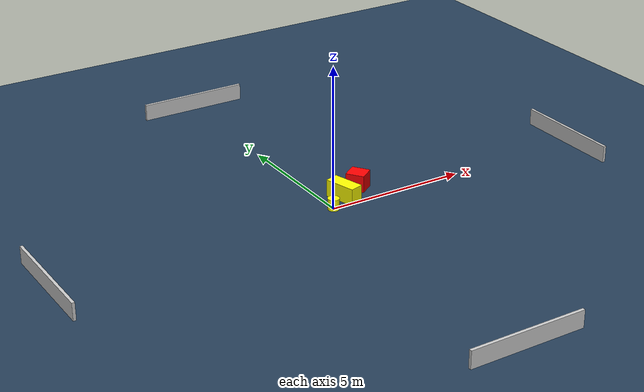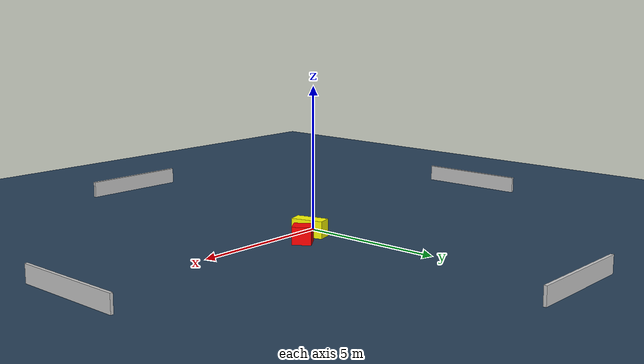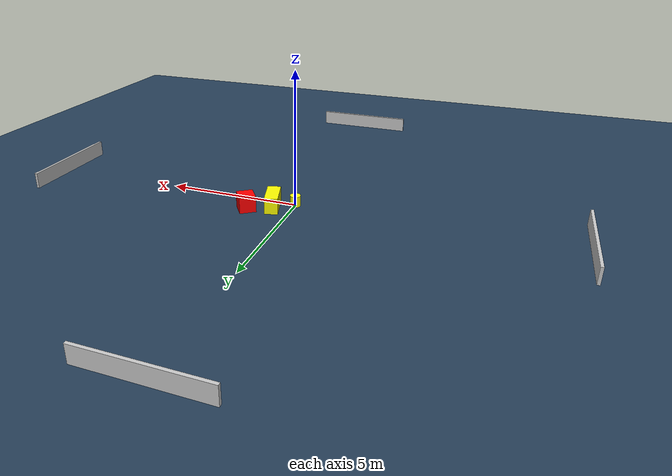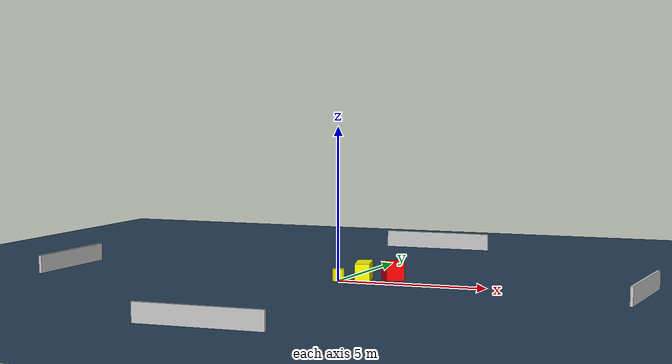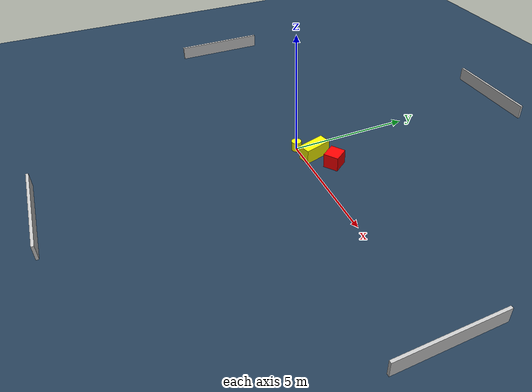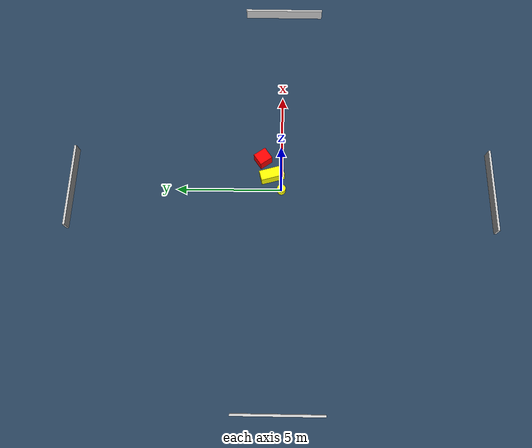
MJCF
<?xml version="1.0" ?>
<mujoco model="generated_environment">
  <option timestep="0.01" integrator="RK4" cone="elliptic"/>
  <default>
    <geom density="1"/>
  </default>
  <asset>
    <texture builtin="gradient" height="3072" name="skybox" rgb1="0.3 0.5 0.7" rgb2="0 0 0" type="skybox" width="512"/>
    <texture builtin="checker" height="300" name="groundplane" rgb1="0.2 0.3 0.4" rgb2="0.1 0.2 0.3" type="2d" width="300"/>
    <material name="groundplane" reflectance="0.2" texrepeat="5 5" texture="groundplane"/>
  </asset>
  <worldbody>
    <light dir="0 0 -1" directional="true" pos="0 0 1.5"/>
    <geom condim="3" friction="0.5 0.005 0.001" material="groundplane" name="floor" pos="0 0 0" size="0 0 0.05" type="plane"/>
    <body name="walls">
      <geom name="wall_1" condim="4" pos="-10.0 0.0 0.3" rgba="0.800000011920929 0.800000011920929 0.800000011920929 1.0" size="0.05 2.0 0.3" type="box"/>
      <geom name="wall_2" condim="4" pos="10.0 0.0 0.3" rgba="0.800000011920929 0.800000011920929 0.800000011920929 1.0" size="0.05 2.0 0.3" type="box"/>
      <geom name="wall_3" condim="4" pos="0.0 -10.0 0.3" rgba="0.800000011920929 0.800000011920929 0.800000011920929 1.0" size="2.0 0.05 0.3" type="box"/>
      <geom name="wall_4" condim="4" pos="0.0 10.0 0.3" rgba="0.800000011920929 0.800000011920929 0.800000011920929 1.0" size="2.0 0.05 0.3" type="box"/>
    </body>
    <body name="robot">
      <joint name="joint_x" type="slide" pos="0 0 0" axis="1 0 0"/>
      <joint name="joint_y" type="slide" pos="0 0 0" axis="0 1 0"/>
      <geom name="robot" type="cylinder" pos="0.0 0.0 0.2" size="0.2 0.2 0.0" mass="5.0" friction="1.0 0.005 0.0001" condim="4" rgba="1.0 1.0 0.0 1.0"/>
    </body>
    <body name="obstacle_1_movable">
      <geom name="obstacle_1_movable" condim="4" pos="0.7068628549931618 0.4654514082358452 0.3" euler="0 0 105.68353597582595" friction="0.0 0.005 0.001" rgba="1.0 1.0 0.0 1.0" size="0.5665815978428399 0.24447569310772763 0.3" type="box" mass="0.1"/>
      <joint type="free"/>
    </body>
    <body name="obstacle_2_static">
      <geom name="obstacle_2_static" condim="4" pos="1.5568505095280936 0.913931336071194 0.3" euler="0 0 125.27108890038639" friction="0.0 0.005 0.001" rgba="1.0 0.0 0.0 1.0" size="0.32744443843048665 0.3024626982654487 0.3" type="box"/>
    </body>
  </worldbody>
  <actuator>
    <motor name="actuator_x" joint="joint_x" gear="1" ctrlrange="-1 1"/>
    <motor name="actuator_y" joint="joint_y" gear="1" ctrlrange="-1 1"/>
  </actuator>
</mujoco>
